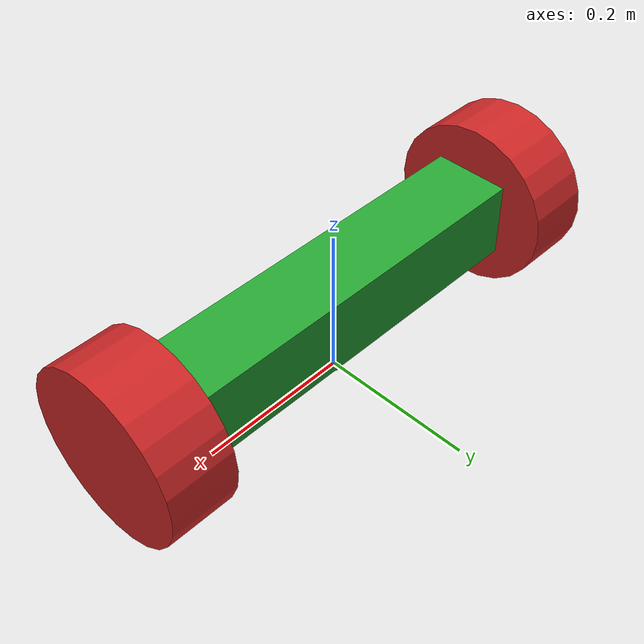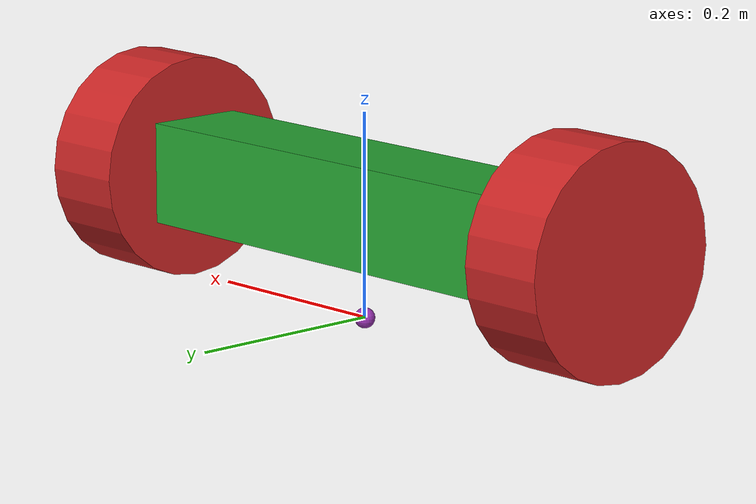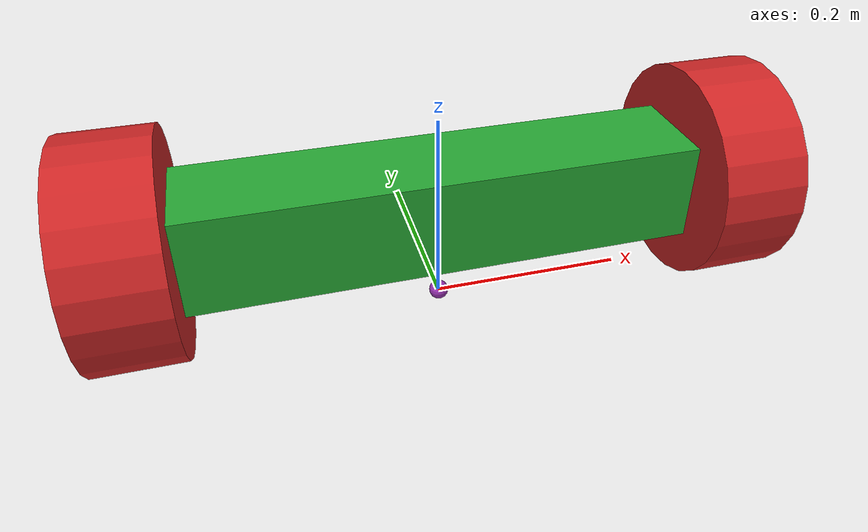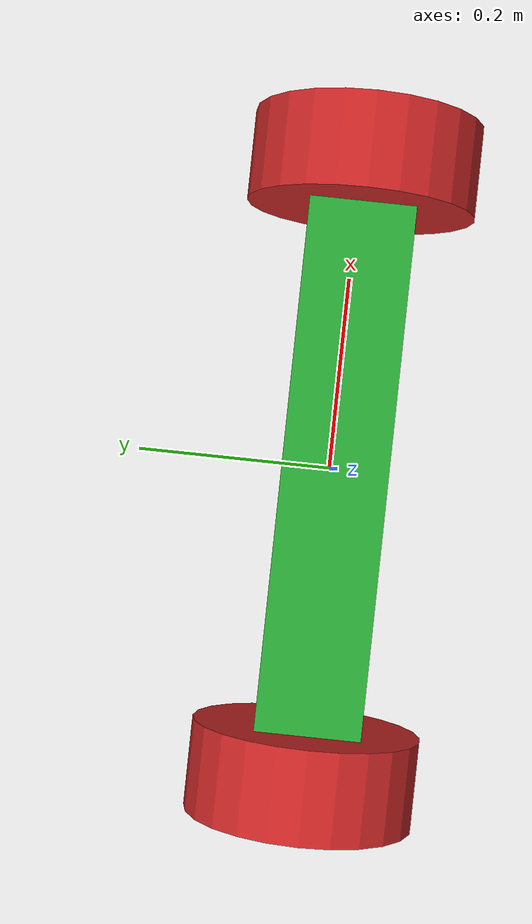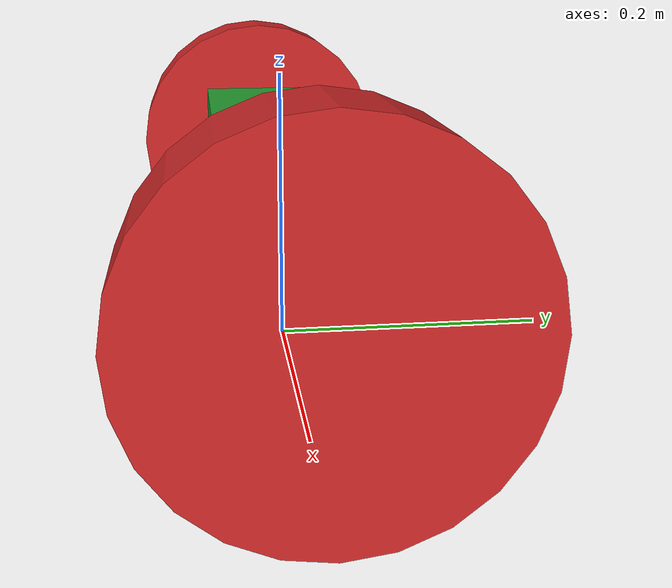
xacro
<?xml version="1.0"?>
<robot name="robot" xmlns:xacro="http://www.ros.org/wiki/xacro">
  <xacro:include filename="$(find fuse_models)/test/wheel.xacro"/>

  <xacro:property name="deg_to_rad" value="0.01745329251994329577"/>

  <!-- Constants for robot dimensions -->
  <xacro:property name="width" value="0.5" /> <!-- Square dimensions (widthxwidth) of beams -->
  <xacro:property name="wheel_radius" value="0.11" /> <!-- Link 1 -->
  <xacro:property name="thickness" value="0.086" /> <!-- Link 2 -->

  <!-- Links: inertial,visual,collision -->
  <link name="base_link">
    <inertial>
      <!-- origin is relative -->
      <origin xyz="0 0 0" rpy="0 0 0"/>
      <mass value="5"/>
      <inertia ixx="5" ixy="0" ixz="0" iyy="5" iyz="0" izz="5"/>
    </inertial>
    <visual>
      <geometry>
        <box size="${width} 0.1 0.1"/>
      </geometry>
    </visual>
    <collision>
      <!-- origin is relative -->
      <origin xyz="0 0 0"/>
      <geometry>
        <box size="${width} 0.1 0.1"/>
      </geometry>
    </collision>
  </link>

  <link name="base_footprint">
    <visual>
      <geometry>
        <sphere radius="0.01"/>
      </geometry>
    </visual>
    <collision>
      <origin xyz="0 0 0"/>
      <geometry>
        <sphere radius="0.00000001"/>
      </geometry>
    </collision>
  </link>
  <joint name="base_footprint_joint" type="fixed">
    <origin xyz="0 0 ${wheel_radius}" rpy="0 0 0"/>
    <child link="base_link"/>
    <parent link="base_footprint"/>
  </joint>

  <!-- Wheels -->
  <xacro:wheel name="wheel_0" parent="base" radius="${wheel_radius}" thickness="${thickness}">
    <origin xyz="${(width+thickness)/2} 0 0" rpy="0 ${90.0 * deg_to_rad} 0"/>
  </xacro:wheel>
  <xacro:wheel name="wheel_1" parent="base" radius="${wheel_radius}" thickness="${thickness}">
    <origin xyz="${-(width+thickness)/2} 0 0" rpy="0 ${90.0 * deg_to_rad} 0"/>
  </xacro:wheel>

  <!-- IMU -->
  <link name="imu_link"/>
  <joint name="imu_joint" type="fixed">
    <parent link="base_link" />
    <child link="imu_link" />
    <origin xyz="0.1 -0.2 0.3" rpy="0.0 ${-90.0 * deg_to_rad} ${90.0 * deg_to_rad}"/>
  </joint>

  <gazebo reference="imu_link">
    <gravity>true</gravity>
    <sensor name="imu_sensor" type="imu">
      <always_on>true</always_on>
      <update_rate>50.0</update_rate>
      <visualize>true</visualize>
      <plugin name="imu_plugin" filename="libgazebo_ros_imu_sensor.so">
        <topicName>imu</topicName>
        <bodyName>imu_link</bodyName>
        <updateRateHZ>50.0</updateRateHZ>
        <frameName>imu_link</frameName>
        <gaussianNoise>1.0e-6</gaussianNoise>
        <xyzOffset>0 0 0</xyzOffset>
        <rpyOffset>0 0 0</rpyOffset>
        <initialOrientationAsReference>false</initialOrientationAsReference>
      </plugin>
    </sensor>
  </gazebo>

  <!-- ros_control plugin -->
  <gazebo>
    <plugin name="gazebo_ros_control" filename="libgazebo_ros_control.so">
      <robotNamespace>/</robotNamespace>
      <robotSimType>gazebo_ros_control/DefaultRobotHWSim</robotSimType>
    </plugin>
  </gazebo>

  <!-- ground truth plugin -->
  <gazebo>
    <plugin name="gazebo_ros_p3d" filename="libgazebo_ros_p3d.so">
      <bodyName>base_link</bodyName>
      <topicName>ground_truth_odom</topicName>
      <alwaysOn>true</alwaysOn>
      <updateRate>50.0</updateRate>
    </plugin>
  </gazebo>

  <!-- Colour -->
  <gazebo reference="base_link">
    <material>Gazebo/Green</material>
  </gazebo>

  <gazebo reference="base_footprint">
    <material>Gazebo/Purple</material>
  </gazebo>
</robot>

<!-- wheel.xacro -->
<robot xmlns:xacro="http://www.ros.org/wiki/xacro">
  <xacro:macro name="wheel" params="name parent radius thickness *origin">
    <link name="${name}_link">
      <inertial>
        <origin xyz="0 0 0" rpy="0 0 0"/>
        <mass value="1"/>
        <inertia ixx="0.2" ixy="0" ixz="0" iyy="0.2" iyz="0" izz="0.2"/>
      </inertial>
      <visual>
        <origin xyz="0 0 0" rpy="0 0 0"/>
        <geometry>
          <cylinder radius="${wheel_radius}" length="${thickness}"/>
        </geometry>
      </visual>
      <collision>
        <origin xyz="0 0 0" rpy="0 0 0"/>
        <geometry>
          <cylinder radius="${wheel_radius}" length="${thickness}"/>
        </geometry>
      </collision>
    </link>

    <joint name="${name}_joint" type="continuous">
      <parent link="${parent}_link"/>
      <child link="${name}_link"/>
      <xacro:insert_block name="origin"/>
      <axis xyz="0 0 1"/>
    </joint>

    <!-- Transmission is important to link the joints and the controller -->
    <transmission name="${name}_joint_trans">
      <type>transmission_interface/SimpleTransmission</type>
      <joint name="${name}_joint">
        <hardwareInterface>hardware_interface/VelocityJointInterface</hardwareInterface>
      </joint>
      <actuator name="${name}_joint_motor">
        <hardwareInterface>hardware_interface/VelocityJointInterface</hardwareInterface>
        <mechanicalReduction>1</mechanicalReduction>
        <motorTorqueConstant>1</motorTorqueConstant>
      </actuator>
    </transmission>

    <gazebo reference="${name}_link">
      <material>Gazebo/Red</material>
    </gazebo>
  </xacro:macro>
</robot>
